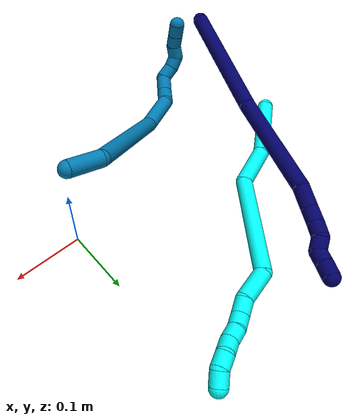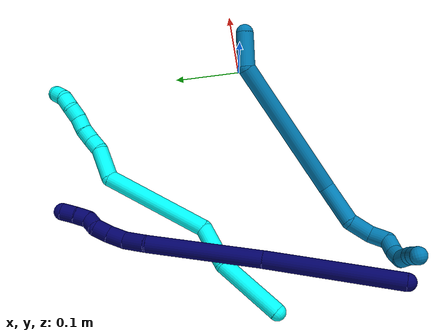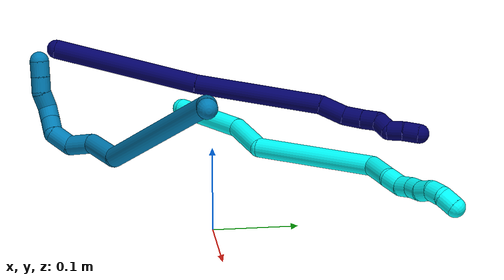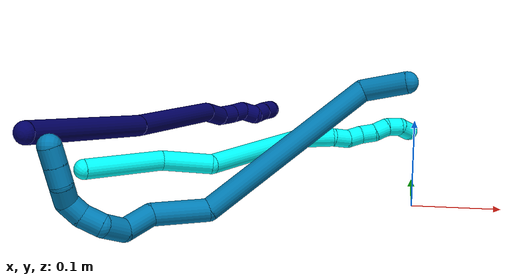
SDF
<sdf version="1.7">
 <world name="default">
  <model name="photoneo_s_sensor">
   <static>1</static>
   <pose>0 0 2 1.57079 1.57079 3.14159</pose>
   <link name="link">
    <inertial><mass>0.1</mass></inertial>
    <sensor name="sensor" type="depth">
     <update_rate>30</update_rate>
     <camera>
      <horizontal_fov>1.22</horizontal_fov>
      <image><width>1920</width><height>1200</height><format>B8G8R8</format></image>
      <clip><near>0.1</near><far>4</far></clip>
      <depth_camera><output>points</output></depth_camera>
     </camera>
     <plugin name="camera_plugin" filename="libgazebo_ros_depth_camera.so">
      <baseline>0.2</baseline>
      <alwaysOn>1</alwaysOn>
      <updateRate>0.0</updateRate>
      <cameraName>camera_ir</cameraName>
      <imageTopicName>/camera/color/image_raw</imageTopicName>
      <cameraInfoTopicName>/camera/color/camera_info</cameraInfoTopicName>
      <depthImageTopicName>/camera/depth/image_raw</depthImageTopicName>
      <depthImageCameraInfoTopicName>/camera/depth/camera_info</depthImageCameraInfoTopicName>
      <pointCloudTopicName>/camera/depth/points</pointCloudTopicName>
      <frameName>fr_optical</frameName>
      <pointCloudCutoff>0.1</pointCloudCutoff>
      <pointCloudCutoffMax>2.0</pointCloudCutoffMax>
      <distortionK1>0</distortionK1>
      <distortionK2>0</distortionK2>
      <distortionK3>0</distortionK3>
      <distortionT1>0</distortionT1>
      <distortionT2>0</distortionT2>
      <CxPrime>0</CxPrime>
      <Cx>0</Cx>
      <Cy>0</Cy>
      <focalLength>0</focalLength>
      <hackBaseline>0</hackBaseline>
     </plugin>
    </sensor>
   </link>
  </model>
  <model name="bin">
   <static>1</static>
   <link name="bottom">
    <collision name="collision-bottom">
     <pose>0 0 -0.01 0 -0 0</pose>
     <geometry><box><size>0.8 0.6 0.02</size></box></geometry>
     <surface>
      <friction><ode><mu>100</mu><mu2>100</mu2></ode></friction>
      <contact><collide_bitmask>65535</collide_bitmask></contact>
     </surface>
    </collision>
   </link>
   <link name="west_wall">
    <collision name="collision-west_wall">
     <pose>-0.41 0 0.1 0 -0 0</pose>
     <geometry><box><size>0.02 0.6 0.2</size></box></geometry>
     <surface>
      <friction><ode><mu>100</mu><mu2>100</mu2></ode></friction>
      <contact><collide_bitmask>65535</collide_bitmask></contact>
     </surface>
    </collision>
   </link>
   <link name="east_wall">
    <collision name="collision-east_wall">
     <pose>0.41 0 0.1 0 -0 0</pose>
     <geometry><box><size>0.02 0.6 0.2</size></box></geometry>
     <surface>
      <friction><ode><mu>100</mu><mu2>100</mu2></ode></friction>
      <contact><collide_bitmask>65535</collide_bitmask></contact>
     </surface>
    </collision>
   </link>
   <link name="south_wall">
    <collision name="collision-south_wall">
     <pose>0 -0.31 0.1 0 -0 0</pose>
     <geometry><box><size>0.8 0.02 0.2</size></box></geometry>
     <surface>
      <friction><ode><mu>100</mu><mu2>100</mu2></ode></friction>
      <contact><collide_bitmask>65535</collide_bitmask></contact>
     </surface>
    </collision>
   </link>
   <link name="north_wall">
    <collision name="collision-north_wall">
     <pose>0 0.31 0.1 0 -0 0</pose>
     <geometry><box><size>0.8 0.02 0.2</size></box></geometry>
     <surface>
      <friction><ode><mu>100</mu><mu2>100</mu2></ode></friction>
      <contact><collide_bitmask>65535</collide_bitmask></contact>
     </surface>
    </collision>
   </link>
  </model>
  <model name="3">
   <static>0</static>
   <link name="3">
    <collision name="collision-cylinder-e_1_1_4">
     <pose>0.042333 0.025758 -0.011848 -2.00193 0.980668 -1.38924</pose>
     <geometry><cylinder><radius>0.0125</radius><length>0.101901</length></cylinder></geometry>
     <surface>
      <friction><ode><mu>1.16</mu><mu2>1.16</mu2><slip1>0</slip1><slip2>0</slip2></ode></friction>
      <contact><ode><kp>1e+06</kp><kd>1</kd><max_vel>0</max_vel><min_depth>0.001</min_depth></ode></contact>
     </surface>
    </collision>
    <visual name="visual-cylinder-e_1_1_4">
     <pose>0.042333 0.025758 -0.011848 -2.00193 0.980668 -1.38924</pose>
     <geometry><cylinder><radius>0.0125</radius><length>0.101901</length></cylinder></geometry>
     <material><ambient>0.003922 1 0.996078 1</ambient></material>
    </visual>
    <collision name="collision-cylinder-e_2_4_5">
     <pose>0.107834 0.063638 -0.041607 -2.54659 0.819769 -1.91258</pose>
     <geometry><cylinder><radius>0.0125</radius><length>0.063387</length></cylinder></geometry>
     <surface>
      <friction><ode><mu>1.16</mu><mu2>1.16</mu2><slip1>0</slip1><slip2>0</slip2></ode></friction>
      <contact><ode><kp>1e+06</kp><kd>1</kd><max_vel>0</max_vel><min_depth>0.001</min_depth></ode></contact>
     </surface>
    </collision>
    <visual name="visual-cylinder-e_2_4_5">
     <pose>0.107834 0.063638 -0.041607 -2.54659 0.819769 -1.91258</pose>
     <geometry><cylinder><radius>0.0125</radius><length>0.063387</length></cylinder></geometry>
     <material><ambient>0.003922 1 0.996078 1</ambient></material>
    </visual>
    <collision name="collision-cylinder-e_3_5_6">
     <pose>0.198473 0.120155 -0.058838 -1.5555 0.988785 -0.976056</pose>
     <geometry><cylinder><radius>0.0125</radius><length>0.16154</length></cylinder></geometry>
     <surface>
      <friction><ode><mu>1.16</mu><mu2>1.16</mu2><slip1>0</slip1><slip2>0</slip2></ode></friction>
      <contact><ode><kp>1e+06</kp><kd>1</kd><max_vel>0</max_vel><min_depth>0.001</min_depth></ode></contact>
     </surface>
    </collision>
    <visual name="visual-cylinder-e_3_5_6">
     <pose>0.198473 0.120155 -0.058838 -1.5555 0.988785 -0.976056</pose>
     <geometry><cylinder><radius>0.0125</radius><length>0.16154</length></cylinder></geometry>
     <material><ambient>0.003922 1 0.996078 1</ambient></material>
    </visual>
    <collision name="collision-cylinder-e_4_6_7">
     <pose>0.28475 0.169671 -0.072346 -2.79515 0.894785 -2.44226</pose>
     <geometry><cylinder><radius>0.0125</radius><length>0.048213</length></cylinder></geometry>
     <surface>
      <friction><ode><mu>1.16</mu><mu2>1.16</mu2><slip1>0</slip1><slip2>0</slip2></ode></friction>
      <contact><ode><kp>1e+06</kp><kd>1</kd><max_vel>0</max_vel><min_depth>0.001</min_depth></ode></contact>
     </surface>
    </collision>
    <visual name="visual-cylinder-e_4_6_7">
     <pose>0.28475 0.169671 -0.072346 -2.79515 0.894785 -2.44226</pose>
     <geometry><cylinder><radius>0.0125</radius><length>0.048213</length></cylinder></geometry>
     <material><ambient>0.003922 1 0.996078 1</ambient></material>
    </visual>
    <collision name="collision-cylinder-e_5_7_8">
     <pose>0.311958 0.180943 -0.091447 -2.24481 0.818007 -1.46674</pose>
     <geometry><cylinder><radius>0.0125</radius><length>0.02303</length></cylinder></geometry>
     <surface>
      <friction><ode><mu>1.16</mu><mu2>1.16</mu2><slip1>0</slip1><slip2>0</slip2></ode></friction>
      <contact><ode><kp>1e+06</kp><kd>1</kd><max_vel>0</max_vel><min_depth>0.001</min_depth></ode></contact>
     </surface>
    </collision>
    <visual name="visual-cylinder-e_5_7_8">
     <pose>0.311958 0.180943 -0.091447 -2.24481 0.818007 -1.46674</pose>
     <geometry><cylinder><radius>0.0125</radius><length>0.02303</length></cylinder></geometry>
     <material><ambient>0.003922 1 0.996078 1</ambient></material>
    </visual>
    <collision name="collision-cylinder-e_6_8_9">
     <pose>0.329828 0.189669 -0.099156 -2.39747 1.18903 -2.09466</pose>
     <geometry><cylinder><radius>0.0125</radius><length>0.020401</length></cylinder></geometry>
     <surface>
      <friction><ode><mu>1.16</mu><mu2>1.16</mu2><slip1>0</slip1><slip2>0</slip2></ode></friction>
      <contact><ode><kp>1e+06</kp><kd>1</kd><max_vel>0</max_vel><min_depth>0.001</min_depth></ode></contact>
     </surface>
    </collision>
    <visual name="visual-cylinder-e_6_8_9">
     <pose>0.329828 0.189669 -0.099156 -2.39747 1.18903 -2.09466</pose>
     <geometry><cylinder><radius>0.0125</radius><length>0.020401</length></cylinder></geometry>
     <material><ambient>0.003922 1 0.996078 1</ambient></material>
    </visual>
    <collision name="collision-cylinder-e_7_9_10">
     <pose>0.348067 0.194165 -0.106887 -2.77015 1.02763 -2.49886</pose>
     <geometry><cylinder><radius>0.0125</radius><length>0.020496</length></cylinder></geometry>
     <surface>
      <friction><ode><mu>1.16</mu><mu2>1.16</mu2><slip1>0</slip1><slip2>0</slip2></ode></friction>
      <contact><ode><kp>1e+06</kp><kd>1</kd><max_vel>0</max_vel><min_depth>0.001</min_depth></ode></contact>
     </surface>
    </collision>
    <visual name="visual-cylinder-e_7_9_10">
     <pose>0.348067 0.194165 -0.106887 -2.77015 1.02763 -2.49886</pose>
     <geometry><cylinder><radius>0.0125</radius><length>0.020496</length></cylinder></geometry>
     <material><ambient>0.003922 1 0.996078 1</ambient></material>
    </visual>
    <collision name="collision-cylinder-e_8_10_11">
     <pose>0.36657 0.197355 -0.114208 -2.65295 1.3 -2.50781</pose>
     <geometry><cylinder><radius>0.0125</radius><length>0.020196</length></cylinder></geometry>
     <surface>
      <friction><ode><mu>1.16</mu><mu2>1.16</mu2><slip1>0</slip1><slip2>0</slip2></ode></friction>
      <contact><ode><kp>1e+06</kp><kd>1</kd><max_vel>0</max_vel><min_depth>0.001</min_depth></ode></contact>
     </surface>
    </collision>
    <visual name="visual-cylinder-e_8_10_11">
     <pose>0.36657 0.197355 -0.114208 -2.65295 1.3 -2.50781</pose>
     <geometry><cylinder><radius>0.0125</radius><length>0.020196</length></cylinder></geometry>
     <material><ambient>0.003922 1 0.996078 1</ambient></material>
    </visual>
    <collision name="collision-cylinder-e_9_11_12">
     <pose>0.384651 0.202723 -0.121052 -2.39816 0.943234 -1.83631</pose>
     <geometry><cylinder><radius>0.0125</radius><length>0.020632</length></cylinder></geometry>
     <surface>
      <friction><ode><mu>1.16</mu><mu2>1.16</mu2><slip1>0</slip1><slip2>0</slip2></ode></friction>
      <contact><ode><kp>1e+06</kp><kd>1</kd><max_vel>0</max_vel><min_depth>0.001</min_depth></ode></contact>
     </surface>
    </collision>
    <visual name="visual-cylinder-e_9_11_12">
     <pose>0.384651 0.202723 -0.121052 -2.39816 0.943234 -1.83631</pose>
     <geometry><cylinder><radius>0.0125</radius><length>0.020632</length></cylinder></geometry>
     <material><ambient>0.003922 1 0.996078 1</ambient></material>
    </visual>
    <collision name="collision-cylinder-e_10_12_2">
     <pose>0.398204 0.214875 -0.128696 -1.94745 0.541083 -0.774674</pose>
     <geometry><cylinder><radius>0.0125</radius><length>0.020204</length></cylinder></geometry>
     <surface>
      <friction><ode><mu>1.16</mu><mu2>1.16</mu2><slip1>0</slip1><slip2>0</slip2></ode></friction>
      <contact><ode><kp>1e+06</kp><kd>1</kd><max_vel>0</max_vel><min_depth>0.001</min_depth></ode></contact>
     </surface>
    </collision>
    <visual name="visual-cylinder-e_10_12_2">
     <pose>0.398204 0.214875 -0.128696 -1.94745 0.541083 -0.774674</pose>
     <geometry><cylinder><radius>0.0125</radius><length>0.020204</length></cylinder></geometry>
     <material><ambient>0.003922 1 0.996078 1</ambient></material>
    </visual>
    <collision name="collision-sphere-2">
     <pose>0.403408 0.222927 -0.131881 0 -0 0</pose>
     <geometry><sphere><radius>0.0125</radius></sphere></geometry>
     <surface>
      <friction><ode><mu>1.16</mu><mu2>1.16</mu2><slip1>0</slip1><slip2>0</slip2></ode></friction>
      <contact><ode><kp>1e+06</kp><kd>1</kd><max_vel>0</max_vel><min_depth>0.001</min_depth></ode></contact>
     </surface>
    </collision>
    <visual name="visual-sphere-2">
     <pose>0.403408 0.222927 -0.131881 0 -0 0</pose>
     <geometry><sphere><radius>0.0125</radius></sphere></geometry>
     <material><ambient>0.003922 1 0.996078 1</ambient></material>
    </visual>
    <collision name="collision-sphere-12">
     <pose>0.393001 0.206823 -0.125511 0 -0 0</pose>
     <geometry><sphere><radius>0.0125</radius></sphere></geometry>
     <surface>
      <friction><ode><mu>1.16</mu><mu2>1.16</mu2><slip1>0</slip1><slip2>0</slip2></ode></friction>
      <contact><ode><kp>1e+06</kp><kd>1</kd><max_vel>0</max_vel><min_depth>0.001</min_depth></ode></contact>
     </surface>
    </collision>
    <visual name="visual-sphere-12">
     <pose>0.393001 0.206823 -0.125511 0 -0 0</pose>
     <geometry><sphere><radius>0.0125</radius></sphere></geometry>
     <material><ambient>0.003922 1 0.996078 1</ambient></material>
    </visual>
    <collision name="collision-sphere-11">
     <pose>0.3763 0.198624 -0.116593 0 -0 0</pose>
     <geometry><sphere><radius>0.0125</radius></sphere></geometry>
     <surface>
      <friction><ode><mu>1.16</mu><mu2>1.16</mu2><slip1>0</slip1><slip2>0</slip2></ode></friction>
      <contact><ode><kp>1e+06</kp><kd>1</kd><max_vel>0</max_vel><min_depth>0.001</min_depth></ode></contact>
     </surface>
    </collision>
    <visual name="visual-sphere-11">
     <pose>0.3763 0.198624 -0.116593 0 -0 0</pose>
     <geometry><sphere><radius>0.0125</radius></sphere></geometry>
     <material><ambient>0.003922 1 0.996078 1</ambient></material>
    </visual>
    <collision name="collision-sphere-10">
     <pose>0.35684 0.196087 -0.111823 0 -0 0</pose>
     <geometry><sphere><radius>0.0125</radius></sphere></geometry>
     <surface>
      <friction><ode><mu>1.16</mu><mu2>1.16</mu2><slip1>0</slip1><slip2>0</slip2></ode></friction>
      <contact><ode><kp>1e+06</kp><kd>1</kd><max_vel>0</max_vel><min_depth>0.001</min_depth></ode></contact>
     </surface>
    </collision>
    <visual name="visual-sphere-10">
     <pose>0.35684 0.196087 -0.111823 0 -0 0</pose>
     <geometry><sphere><radius>0.0125</radius></sphere></geometry>
     <material><ambient>0.003922 1 0.996078 1</ambient></material>
    </visual>
    <collision name="collision-sphere-9">
     <pose>0.339295 0.192243 -0.101952 0 -0 0</pose>
     <geometry><sphere><radius>0.0125</radius></sphere></geometry>
     <surface>
      <friction><ode><mu>1.16</mu><mu2>1.16</mu2><slip1>0</slip1><slip2>0</slip2></ode></friction>
      <contact><ode><kp>1e+06</kp><kd>1</kd><max_vel>0</max_vel><min_depth>0.001</min_depth></ode></contact>
     </surface>
    </collision>
    <visual name="visual-sphere-9">
     <pose>0.339295 0.192243 -0.101952 0 -0 0</pose>
     <geometry><sphere><radius>0.0125</radius></sphere></geometry>
     <material><ambient>0.003922 1 0.996078 1</ambient></material>
    </visual>
    <collision name="collision-sphere-4">
     <pose>0.084666 0.051516 -0.023697 0 -0 0</pose>
     <geometry><sphere><radius>0.0125</radius></sphere></geometry>
     <surface>
      <friction><ode><mu>1.16</mu><mu2>1.16</mu2><slip1>0</slip1><slip2>0</slip2></ode></friction>
      <contact><ode><kp>1e+06</kp><kd>1</kd><max_vel>0</max_vel><min_depth>0.001</min_depth></ode></contact>
     </surface>
    </collision>
    <visual name="visual-sphere-4">
     <pose>0.084666 0.051516 -0.023697 0 -0 0</pose>
     <geometry><sphere><radius>0.0125</radius></sphere></geometry>
     <material><ambient>0.003922 1 0.996078 1</ambient></material>
    </visual>
    <collision name="collision-sphere-1">
     <geometry><sphere><radius>0.0125</radius></sphere></geometry>
     <surface>
      <friction><ode><mu>1.16</mu><mu2>1.16</mu2><slip1>0</slip1><slip2>0</slip2></ode></friction>
      <contact><ode><kp>1e+06</kp><kd>1</kd><max_vel>0</max_vel><min_depth>0.001</min_depth></ode></contact>
     </surface>
    </collision>
    <visual name="visual-sphere-1">
     <geometry><sphere><radius>0.0125</radius></sphere></geometry>
     <material><ambient>0.003922 1 0.996078 1</ambient></material>
    </visual>
    <collision name="collision-sphere-8">
     <pose>0.320362 0.187094 -0.09636 0 -0 0</pose>
     <geometry><sphere><radius>0.0125</radius></sphere></geometry>
     <surface>
      <friction><ode><mu>1.16</mu><mu2>1.16</mu2><slip1>0</slip1><slip2>0</slip2></ode></friction>
      <contact><ode><kp>1e+06</kp><kd>1</kd><max_vel>0</max_vel><min_depth>0.001</min_depth></ode></contact>
     </surface>
    </collision>
    <visual name="visual-sphere-8">
     <pose>0.320362 0.187094 -0.09636 0 -0 0</pose>
     <geometry><sphere><radius>0.0125</radius></sphere></geometry>
     <material><ambient>0.003922 1 0.996078 1</ambient></material>
    </visual>
    <collision name="collision-sphere-5">
     <pose>0.131001 0.07576 -0.059518 0 -0 0</pose>
     <geometry><sphere><radius>0.0125</radius></sphere></geometry>
     <surface>
      <friction><ode><mu>1.16</mu><mu2>1.16</mu2><slip1>0</slip1><slip2>0</slip2></ode></friction>
      <contact><ode><kp>1e+06</kp><kd>1</kd><max_vel>0</max_vel><min_depth>0.001</min_depth></ode></contact>
     </surface>
    </collision>
    <visual name="visual-sphere-5">
     <pose>0.131001 0.07576 -0.059518 0 -0 0</pose>
     <geometry><sphere><radius>0.0125</radius></sphere></geometry>
     <material><ambient>0.003922 1 0.996078 1</ambient></material>
    </visual>
    <collision name="collision-sphere-6">
     <pose>0.265945 0.164549 -0.058159 0 -0 0</pose>
     <geometry><sphere><radius>0.0125</radius></sphere></geometry>
     <surface>
      <friction><ode><mu>1.16</mu><mu2>1.16</mu2><slip1>0</slip1><slip2>0</slip2></ode></friction>
      <contact><ode><kp>1e+06</kp><kd>1</kd><max_vel>0</max_vel><min_depth>0.001</min_depth></ode></contact>
     </surface>
    </collision>
    <visual name="visual-sphere-6">
     <pose>0.265945 0.164549 -0.058159 0 -0 0</pose>
     <geometry><sphere><radius>0.0125</radius></sphere></geometry>
     <material><ambient>0.003922 1 0.996078 1</ambient></material>
    </visual>
    <collision name="collision-sphere-7">
     <pose>0.303555 0.174792 -0.086533 0 -0 0</pose>
     <geometry><sphere><radius>0.0125</radius></sphere></geometry>
     <surface>
      <friction><ode><mu>1.16</mu><mu2>1.16</mu2><slip1>0</slip1><slip2>0</slip2></ode></friction>
      <contact><ode><kp>1e+06</kp><kd>1</kd><max_vel>0</max_vel><min_depth>0.001</min_depth></ode></contact>
     </surface>
    </collision>
    <visual name="visual-sphere-7">
     <pose>0.303555 0.174792 -0.086533 0 -0 0</pose>
     <geometry><sphere><radius>0.0125</radius></sphere></geometry>
     <material><ambient>0.003922 1 0.996078 1</ambient></material>
    </visual>
    <inertial>
     <pose>0.202742 0.117549 -0.061123 0 -0 0</pose>
     <mass>0.5</mass>
     <inertia>
      <ixx>-9.8e-05</ixx>
      <ixy>0</ixy>
      <ixz>0</ixz>
      <iyy>0.000124</iyy>
      <iyz>0</iyz>
      <izz>-0.000677</izz>
     </inertia>
    </inertial>
   </link>
   <pose>-0.388512 0.002714 0.027466 -1.09396 -0.540575 0.670016</pose>
  </model>
  <model name="7">
   <static>0</static>
   <link name="7">
    <collision name="collision-cylinder-e_1_1_4">
     <pose>0.028088 0.015694 -0.090987 -2.97079 0.295311 -2.09706</pose>
     <geometry><cylinder><radius>0.0125</radius><length>0.193017</length></cylinder></geometry>
     <surface>
      <friction><ode><mu>1.16</mu><mu2>1.16</mu2><slip1>0</slip1><slip2>0</slip2></ode></friction>
      <contact><ode><kp>1e+06</kp><kd>1</kd><max_vel>0</max_vel><min_depth>0.001</min_depth></ode></contact>
     </surface>
    </collision>
    <visual name="visual-cylinder-e_1_1_4">
     <pose>0.028088 0.015694 -0.090987 -2.97079 0.295311 -2.09706</pose>
     <geometry><cylinder><radius>0.0125</radius><length>0.193017</length></cylinder></geometry>
     <material><ambient>0.003922 0 0.403922 1</ambient></material>
    </visual>
    <collision name="collision-cylinder-e_2_4_5">
     <pose>0.073966 0.04663 -0.260919 -2.95086 0.217761 -1.70386</pose>
     <geometry><cylinder><radius>0.0125</radius><length>0.164694</length></cylinder></geometry>
     <surface>
      <friction><ode><mu>1.16</mu><mu2>1.16</mu2><slip1>0</slip1><slip2>0</slip2></ode></friction>
      <contact><ode><kp>1e+06</kp><kd>1</kd><max_vel>0</max_vel><min_depth>0.001</min_depth></ode></contact>
     </surface>
    </collision>
    <visual name="visual-cylinder-e_2_4_5">
     <pose>0.073966 0.04663 -0.260919 -2.95086 0.217761 -1.70386</pose>
     <geometry><cylinder><radius>0.0125</radius><length>0.164694</length></cylinder></geometry>
     <material><ambient>0.003922 0 0.403922 1</ambient></material>
    </visual>
    <collision name="collision-cylinder-e_3_5_6">
     <pose>0.099298 0.063039 -0.355159 -3.06547 0.456931 -2.81694</pose>
     <geometry><cylinder><radius>0.0125</radius><length>0.034187</length></cylinder></geometry>
     <surface>
      <friction><ode><mu>1.16</mu><mu2>1.16</mu2><slip1>0</slip1><slip2>0</slip2></ode></friction>
      <contact><ode><kp>1e+06</kp><kd>1</kd><max_vel>0</max_vel><min_depth>0.001</min_depth></ode></contact>
     </surface>
    </collision>
    <visual name="visual-cylinder-e_3_5_6">
     <pose>0.099298 0.063039 -0.355159 -3.06547 0.456931 -2.81694</pose>
     <geometry><cylinder><radius>0.0125</radius><length>0.034187</length></cylinder></geometry>
     <material><ambient>0.003922 0 0.403922 1</ambient></material>
    </visual>
    <collision name="collision-cylinder-e_4_6_7">
     <pose>0.110976 0.068734 -0.381718 -2.7594 0.328356 -1.41635</pose>
     <geometry><cylinder><radius>0.0125</radius><length>0.025649</length></cylinder></geometry>
     <surface>
      <friction><ode><mu>1.16</mu><mu2>1.16</mu2><slip1>0</slip1><slip2>0</slip2></ode></friction>
      <contact><ode><kp>1e+06</kp><kd>1</kd><max_vel>0</max_vel><min_depth>0.001</min_depth></ode></contact>
     </surface>
    </collision>
    <visual name="visual-cylinder-e_4_6_7">
     <pose>0.110976 0.068734 -0.381718 -2.7594 0.328356 -1.41635</pose>
     <geometry><cylinder><radius>0.0125</radius><length>0.025649</length></cylinder></geometry>
     <material><ambient>0.003922 0 0.403922 1</ambient></material>
    </visual>
    <collision name="collision-cylinder-e_5_7_8">
     <pose>0.118517 0.078406 -0.402117 -2.62868 0.314042 -1.08635</pose>
     <geometry><cylinder><radius>0.0125</radius><length>0.022047</length></cylinder></geometry>
     <surface>
      <friction><ode><mu>1.16</mu><mu2>1.16</mu2><slip1>0</slip1><slip2>0</slip2></ode></friction>
      <contact><ode><kp>1e+06</kp><kd>1</kd><max_vel>0</max_vel><min_depth>0.001</min_depth></ode></contact>
     </surface>
    </collision>
    <visual name="visual-cylinder-e_5_7_8">
     <pose>0.118517 0.078406 -0.402117 -2.62868 0.314042 -1.08635</pose>
     <geometry><cylinder><radius>0.0125</radius><length>0.022047</length></cylinder></geometry>
     <material><ambient>0.003922 0 0.403922 1</ambient></material>
    </visual>
    <collision name="collision-cylinder-e_6_8_9">
     <pose>0.129629 0.087146 -0.416623 -2.55175 0.873008 -1.9872</pose>
     <geometry><cylinder><radius>0.0125</radius><length>0.020115</length></cylinder></geometry>
     <surface>
      <friction><ode><mu>1.16</mu><mu2>1.16</mu2><slip1>0</slip1><slip2>0</slip2></ode></friction>
      <contact><ode><kp>1e+06</kp><kd>1</kd><max_vel>0</max_vel><min_depth>0.001</min_depth></ode></contact>
     </surface>
    </collision>
    <visual name="visual-cylinder-e_6_8_9">
     <pose>0.129629 0.087146 -0.416623 -2.55175 0.873008 -1.9872</pose>
     <geometry><cylinder><radius>0.0125</radius><length>0.020115</length></cylinder></geometry>
     <material><ambient>0.003922 0 0.403922 1</ambient></material>
    </visual>
    <collision name="collision-cylinder-e_7_9_10">
     <pose>0.1392 0.094687 -0.431034 -2.72994 0.186754 -0.843287</pose>
     <geometry><cylinder><radius>0.0125</radius><length>0.020078</length></cylinder></geometry>
     <surface>
      <friction><ode><mu>1.16</mu><mu2>1.16</mu2><slip1>0</slip1><slip2>0</slip2></ode></friction>
      <contact><ode><kp>1e+06</kp><kd>1</kd><max_vel>0</max_vel><min_depth>0.001</min_depth></ode></contact>
     </surface>
    </collision>
    <visual name="visual-cylinder-e_7_9_10">
     <pose>0.1392 0.094687 -0.431034 -2.72994 0.186754 -0.843287</pose>
     <geometry><cylinder><radius>0.0125</radius><length>0.020078</length></cylinder></geometry>
     <material><ambient>0.003922 0 0.403922 1</ambient></material>
    </visual>
    <collision name="collision-cylinder-e_8_10_2">
     <pose>0.143714 0.101567 -0.449375 -2.83613 0.265373 -1.42865</pose>
     <geometry><cylinder><radius>0.0125</radius><length>0.020211</length></cylinder></geometry>
     <surface>
      <friction><ode><mu>1.16</mu><mu2>1.16</mu2><slip1>0</slip1><slip2>0</slip2></ode></friction>
      <contact><ode><kp>1e+06</kp><kd>1</kd><max_vel>0</max_vel><min_depth>0.001</min_depth></ode></contact>
     </surface>
    </collision>
    <visual name="visual-cylinder-e_8_10_2">
     <pose>0.143714 0.101567 -0.449375 -2.83613 0.265373 -1.42865</pose>
     <geometry><cylinder><radius>0.0125</radius><length>0.020211</length></cylinder></geometry>
     <material><ambient>0.003922 0 0.403922 1</ambient></material>
    </visual>
    <collision name="collision-sphere-2">
     <pose>0.146364 0.1045 -0.458675 0 -0 0</pose>
     <geometry><sphere><radius>0.0125</radius></sphere></geometry>
     <surface>
      <friction><ode><mu>1.16</mu><mu2>1.16</mu2><slip1>0</slip1><slip2>0</slip2></ode></friction>
      <contact><ode><kp>1e+06</kp><kd>1</kd><max_vel>0</max_vel><min_depth>0.001</min_depth></ode></contact>
     </surface>
    </collision>
    <visual name="visual-sphere-2">
     <pose>0.146364 0.1045 -0.458675 0 -0 0</pose>
     <geometry><sphere><radius>0.0125</radius></sphere></geometry>
     <material><ambient>0.003922 0 0.403922 1</ambient></material>
    </visual>
    <collision name="collision-sphere-10">
     <pose>0.141064 0.098634 -0.440074 0 -0 0</pose>
     <geometry><sphere><radius>0.0125</radius></sphere></geometry>
     <surface>
      <friction><ode><mu>1.16</mu><mu2>1.16</mu2><slip1>0</slip1><slip2>0</slip2></ode></friction>
      <contact><ode><kp>1e+06</kp><kd>1</kd><max_vel>0</max_vel><min_depth>0.001</min_depth></ode></contact>
     </surface>
    </collision>
    <visual name="visual-sphere-10">
     <pose>0.141064 0.098634 -0.440074 0 -0 0</pose>
     <geometry><sphere><radius>0.0125</radius></sphere></geometry>
     <material><ambient>0.003922 0 0.403922 1</ambient></material>
    </visual>
    <collision name="collision-sphere-9">
     <pose>0.137336 0.09074 -0.421993 0 -0 0</pose>
     <geometry><sphere><radius>0.0125</radius></sphere></geometry>
     <surface>
      <friction><ode><mu>1.16</mu><mu2>1.16</mu2><slip1>0</slip1><slip2>0</slip2></ode></friction>
      <contact><ode><kp>1e+06</kp><kd>1</kd><max_vel>0</max_vel><min_depth>0.001</min_depth></ode></contact>
     </surface>
    </collision>
    <visual name="visual-sphere-9">
     <pose>0.137336 0.09074 -0.421993 0 -0 0</pose>
     <geometry><sphere><radius>0.0125</radius></sphere></geometry>
     <material><ambient>0.003922 0 0.403922 1</ambient></material>
    </visual>
    <collision name="collision-sphere-4">
     <pose>0.056175 0.031388 -0.181975 0 -0 0</pose>
     <geometry><sphere><radius>0.0125</radius></sphere></geometry>
     <surface>
      <friction><ode><mu>1.16</mu><mu2>1.16</mu2><slip1>0</slip1><slip2>0</slip2></ode></friction>
      <contact><ode><kp>1e+06</kp><kd>1</kd><max_vel>0</max_vel><min_depth>0.001</min_depth></ode></contact>
     </surface>
    </collision>
    <visual name="visual-sphere-4">
     <pose>0.056175 0.031388 -0.181975 0 -0 0</pose>
     <geometry><sphere><radius>0.0125</radius></sphere></geometry>
     <material><ambient>0.003922 0 0.403922 1</ambient></material>
    </visual>
    <collision name="collision-sphere-1">
     <geometry><sphere><radius>0.0125</radius></sphere></geometry>
     <surface>
      <friction><ode><mu>1.16</mu><mu2>1.16</mu2><slip1>0</slip1><slip2>0</slip2></ode></friction>
      <contact><ode><kp>1e+06</kp><kd>1</kd><max_vel>0</max_vel><min_depth>0.001</min_depth></ode></contact>
     </surface>
    </collision>
    <visual name="visual-sphere-1">
     <geometry><sphere><radius>0.0125</radius></sphere></geometry>
     <material><ambient>0.003922 0 0.403922 1</ambient></material>
    </visual>
    <collision name="collision-sphere-8">
     <pose>0.121922 0.083551 -0.411253 0 -0 0</pose>
     <geometry><sphere><radius>0.0125</radius></sphere></geometry>
     <surface>
      <friction><ode><mu>1.16</mu><mu2>1.16</mu2><slip1>0</slip1><slip2>0</slip2></ode></friction>
      <contact><ode><kp>1e+06</kp><kd>1</kd><max_vel>0</max_vel><min_depth>0.001</min_depth></ode></contact>
     </surface>
    </collision>
    <visual name="visual-sphere-8">
     <pose>0.121922 0.083551 -0.411253 0 -0 0</pose>
     <geometry><sphere><radius>0.0125</radius></sphere></geometry>
     <material><ambient>0.003922 0 0.403922 1</ambient></material>
    </visual>
    <collision name="collision-sphere-5">
     <pose>0.091757 0.061873 -0.339864 0 -0 0</pose>
     <geometry><sphere><radius>0.0125</radius></sphere></geometry>
     <surface>
      <friction><ode><mu>1.16</mu><mu2>1.16</mu2><slip1>0</slip1><slip2>0</slip2></ode></friction>
      <contact><ode><kp>1e+06</kp><kd>1</kd><max_vel>0</max_vel><min_depth>0.001</min_depth></ode></contact>
     </surface>
    </collision>
    <visual name="visual-sphere-5">
     <pose>0.091757 0.061873 -0.339864 0 -0 0</pose>
     <geometry><sphere><radius>0.0125</radius></sphere></geometry>
     <material><ambient>0.003922 0 0.403922 1</ambient></material>
    </visual>
    <collision name="collision-sphere-6">
     <pose>0.10684 0.064206 -0.370455 0 -0 0</pose>
     <geometry><sphere><radius>0.0125</radius></sphere></geometry>
     <surface>
      <friction><ode><mu>1.16</mu><mu2>1.16</mu2><slip1>0</slip1><slip2>0</slip2></ode></friction>
      <contact><ode><kp>1e+06</kp><kd>1</kd><max_vel>0</max_vel><min_depth>0.001</min_depth></ode></contact>
     </surface>
    </collision>
    <visual name="visual-sphere-6">
     <pose>0.10684 0.064206 -0.370455 0 -0 0</pose>
     <geometry><sphere><radius>0.0125</radius></sphere></geometry>
     <material><ambient>0.003922 0 0.403922 1</ambient></material>
    </visual>
    <collision name="collision-sphere-7">
     <pose>0.115111 0.073261 -0.392982 0 -0 0</pose>
     <geometry><sphere><radius>0.0125</radius></sphere></geometry>
     <surface>
      <friction><ode><mu>1.16</mu><mu2>1.16</mu2><slip1>0</slip1><slip2>0</slip2></ode></friction>
      <contact><ode><kp>1e+06</kp><kd>1</kd><max_vel>0</max_vel><min_depth>0.001</min_depth></ode></contact>
     </surface>
    </collision>
    <visual name="visual-sphere-7">
     <pose>0.115111 0.073261 -0.392982 0 -0 0</pose>
     <geometry><sphere><radius>0.0125</radius></sphere></geometry>
     <material><ambient>0.003922 0 0.403922 1</ambient></material>
    </visual>
    <inertial>
     <pose>0.069529 0.044125 -0.234899 0 -0 0</pose>
     <mass>0.5</mass>
     <inertia>
      <ixx>-0.001208</ixx>
      <ixy>0</ixy>
      <ixz>0</ixz>
      <iyy>-0.000474</iyy>
      <iyz>0</iyz>
      <izz>-0.000472</izz>
     </inertia>
    </inertial>
   </link>
   <pose>-0.386539 -0.163291 0.116138 1.44461 0.829173 -0.106425</pose>
  </model>
  <model name="9">
   <static>0</static>
   <link name="9">
    <collision name="collision-cylinder-e_1_1_4">
     <pose>0.006272 0.000179 -0.024623 -3.13431 0.249395 -3.08351</pose>
     <geometry><cylinder><radius>0.0125</radius><length>0.05082</length></cylinder></geometry>
     <surface>
      <friction><ode><mu>1.16</mu><mu2>1.16</mu2><slip1>0</slip1><slip2>0</slip2></ode></friction>
      <contact><ode><kp>1e+06</kp><kd>1</kd><max_vel>0</max_vel><min_depth>0.001</min_depth></ode></contact>
     </surface>
    </collision>
    <visual name="visual-cylinder-e_1_1_4">
     <pose>0.006272 0.000179 -0.024623 -3.13431 0.249395 -3.08351</pose>
     <geometry><cylinder><radius>0.0125</radius><length>0.05082</length></cylinder></geometry>
     <material><ambient>0 0.490196 0.709804 1</ambient></material>
    </visual>
    <collision name="collision-cylinder-e_2_4_5">
     <pose>0.027188 -0.067736 -0.132568 2.45642 0.135261 0.375365</pose>
     <geometry><cylinder><radius>0.0125</radius><length>0.217198</length></cylinder></geometry>
     <surface>
      <friction><ode><mu>1.16</mu><mu2>1.16</mu2><slip1>0</slip1><slip2>0</slip2></ode></friction>
      <contact><ode><kp>1e+06</kp><kd>1</kd><max_vel>0</max_vel><min_depth>0.001</min_depth></ode></contact>
     </surface>
    </collision>
    <visual name="visual-cylinder-e_2_4_5">
     <pose>0.027188 -0.067736 -0.132568 2.45642 0.135261 0.375365</pose>
     <geometry><cylinder><radius>0.0125</radius><length>0.217198</length></cylinder></geometry>
     <material><ambient>0 0.490196 0.709804 1</ambient></material>
    </visual>
    <collision name="collision-cylinder-e_3_5_6">
     <pose>0.034475 -0.142906 -0.245063 2.90364 -0.240336 -1.58086</pose>
     <geometry><cylinder><radius>0.0125</radius><length>0.061816</length></cylinder></geometry>
     <surface>
      <friction><ode><mu>1.16</mu><mu2>1.16</mu2><slip1>0</slip1><slip2>0</slip2></ode></friction>
      <contact><ode><kp>1e+06</kp><kd>1</kd><max_vel>0</max_vel><min_depth>0.001</min_depth></ode></contact>
     </surface>
    </collision>
    <visual name="visual-cylinder-e_3_5_6">
     <pose>0.034475 -0.142906 -0.245063 2.90364 -0.240336 -1.58086</pose>
     <geometry><cylinder><radius>0.0125</radius><length>0.061816</length></cylinder></geometry>
     <material><ambient>0 0.490196 0.709804 1</ambient></material>
    </visual>
    <collision name="collision-cylinder-e_4_6_7">
     <pose>0.022084 -0.162634 -0.285832 2.31264 -0.285326 -0.63114</pose>
     <geometry><cylinder><radius>0.0125</radius><length>0.035769</length></cylinder></geometry>
     <surface>
      <friction><ode><mu>1.16</mu><mu2>1.16</mu2><slip1>0</slip1><slip2>0</slip2></ode></friction>
      <contact><ode><kp>1e+06</kp><kd>1</kd><max_vel>0</max_vel><min_depth>0.001</min_depth></ode></contact>
     </surface>
    </collision>
    <visual name="visual-cylinder-e_4_6_7">
     <pose>0.022084 -0.162634 -0.285832 2.31264 -0.285326 -0.63114</pose>
     <geometry><cylinder><radius>0.0125</radius><length>0.035769</length></cylinder></geometry>
     <material><ambient>0 0.490196 0.709804 1</ambient></material>
    </visual>
    <collision name="collision-cylinder-e_5_7_8">
     <pose>0.006029 -0.179106 -0.305647 2.70656 -0.882513 -2.26626</pose>
     <geometry><cylinder><radius>0.0125</radius><length>0.02854</length></cylinder></geometry>
     <surface>
      <friction><ode><mu>1.16</mu><mu2>1.16</mu2><slip1>0</slip1><slip2>0</slip2></ode></friction>
      <contact><ode><kp>1e+06</kp><kd>1</kd><max_vel>0</max_vel><min_depth>0.001</min_depth></ode></contact>
     </surface>
    </collision>
    <visual name="visual-cylinder-e_5_7_8">
     <pose>0.006029 -0.179106 -0.305647 2.70656 -0.882513 -2.26626</pose>
     <geometry><cylinder><radius>0.0125</radius><length>0.02854</length></cylinder></geometry>
     <material><ambient>0 0.490196 0.709804 1</ambient></material>
    </visual>
    <collision name="collision-cylinder-e_6_8_9">
     <pose>-0.009934 -0.17984 -0.323982 -2.84554 -0.43717 1.95918</pose>
     <geometry><cylinder><radius>0.0125</radius><length>0.023346</length></cylinder></geometry>
     <surface>
      <friction><ode><mu>1.16</mu><mu2>1.16</mu2><slip1>0</slip1><slip2>0</slip2></ode></friction>
      <contact><ode><kp>1e+06</kp><kd>1</kd><max_vel>0</max_vel><min_depth>0.001</min_depth></ode></contact>
     </surface>
    </collision>
    <visual name="visual-cylinder-e_6_8_9">
     <pose>-0.009934 -0.17984 -0.323982 -2.84554 -0.43717 1.95918</pose>
     <geometry><cylinder><radius>0.0125</radius><length>0.023346</length></cylinder></geometry>
     <material><ambient>0 0.490196 0.709804 1</ambient></material>
    </visual>
    <collision name="collision-cylinder-e_7_9_10">
     <pose>-0.021586 -0.173032 -0.340671 -2.62628 -0.726248 1.92888</pose>
     <geometry><cylinder><radius>0.0125</radius><length>0.020207</length></cylinder></geometry>
     <surface>
      <friction><ode><mu>1.16</mu><mu2>1.16</mu2><slip1>0</slip1><slip2>0</slip2></ode></friction>
      <contact><ode><kp>1e+06</kp><kd>1</kd><max_vel>0</max_vel><min_depth>0.001</min_depth></ode></contact>
     </surface>
    </collision>
    <visual name="visual-cylinder-e_7_9_10">
     <pose>-0.021586 -0.173032 -0.340671 -2.62628 -0.726248 1.92888</pose>
     <geometry><cylinder><radius>0.0125</radius><length>0.020207</length></cylinder></geometry>
     <material><ambient>0 0.490196 0.709804 1</ambient></material>
    </visual>
    <collision name="collision-cylinder-e_8_10_11">
     <pose>-0.038442 -0.165867 -0.34777 -1.72248 -1.24021 1.38733</pose>
     <geometry><cylinder><radius>0.0125</radius><length>0.021455</length></cylinder></geometry>
     <surface>
      <friction><ode><mu>1.16</mu><mu2>1.16</mu2><slip1>0</slip1><slip2>0</slip2></ode></friction>
      <contact><ode><kp>1e+06</kp><kd>1</kd><max_vel>0</max_vel><min_depth>0.001</min_depth></ode></contact>
     </surface>
    </collision>
    <visual name="visual-cylinder-e_8_10_11">
     <pose>-0.038442 -0.165867 -0.34777 -1.72248 -1.24021 1.38733</pose>
     <geometry><cylinder><radius>0.0125</radius><length>0.021455</length></cylinder></geometry>
     <material><ambient>0 0.490196 0.709804 1</ambient></material>
    </visual>
    <collision name="collision-cylinder-e_9_11_12">
     <pose>-0.056516 -0.156309 -0.35015 -1.86505 -0.892347 1.14541</pose>
     <geometry><cylinder><radius>0.0125</radius><length>0.020366</length></cylinder></geometry>
     <surface>
      <friction><ode><mu>1.16</mu><mu2>1.16</mu2><slip1>0</slip1><slip2>0</slip2></ode></friction>
      <contact><ode><kp>1e+06</kp><kd>1</kd><max_vel>0</max_vel><min_depth>0.001</min_depth></ode></contact>
     </surface>
    </collision>
    <visual name="visual-cylinder-e_9_11_12">
     <pose>-0.056516 -0.156309 -0.35015 -1.86505 -0.892347 1.14541</pose>
     <geometry><cylinder><radius>0.0125</radius><length>0.020366</length></cylinder></geometry>
     <material><ambient>0 0.490196 0.709804 1</ambient></material>
    </visual>
    <collision name="collision-cylinder-e_10_12_2">
     <pose>-0.072516 -0.144175 -0.353879 -1.87291 -0.907794 1.17101</pose>
     <geometry><cylinder><radius>0.0125</radius><length>0.020483</length></cylinder></geometry>
     <surface>
      <friction><ode><mu>1.16</mu><mu2>1.16</mu2><slip1>0</slip1><slip2>0</slip2></ode></friction>
      <contact><ode><kp>1e+06</kp><kd>1</kd><max_vel>0</max_vel><min_depth>0.001</min_depth></ode></contact>
     </surface>
    </collision>
    <visual name="visual-cylinder-e_10_12_2">
     <pose>-0.072516 -0.144175 -0.353879 -1.87291 -0.907794 1.17101</pose>
     <geometry><cylinder><radius>0.0125</radius><length>0.020483</length></cylinder></geometry>
     <material><ambient>0 0.490196 0.709804 1</ambient></material>
    </visual>
    <collision name="collision-sphere-2">
     <pose>-0.080588 -0.138157 -0.355754 0 -0 0</pose>
     <geometry><sphere><radius>0.0125</radius></sphere></geometry>
     <surface>
      <friction><ode><mu>1.16</mu><mu2>1.16</mu2><slip1>0</slip1><slip2>0</slip2></ode></friction>
      <contact><ode><kp>1e+06</kp><kd>1</kd><max_vel>0</max_vel><min_depth>0.001</min_depth></ode></contact>
     </surface>
    </collision>
    <visual name="visual-sphere-2">
     <pose>-0.080588 -0.138157 -0.355754 0 -0 0</pose>
     <geometry><sphere><radius>0.0125</radius></sphere></geometry>
     <material><ambient>0 0.490196 0.709804 1</ambient></material>
    </visual>
    <collision name="collision-sphere-12">
     <pose>-0.064444 -0.150193 -0.352003 0 -0 0</pose>
     <geometry><sphere><radius>0.0125</radius></sphere></geometry>
     <surface>
      <friction><ode><mu>1.16</mu><mu2>1.16</mu2><slip1>0</slip1><slip2>0</slip2></ode></friction>
      <contact><ode><kp>1e+06</kp><kd>1</kd><max_vel>0</max_vel><min_depth>0.001</min_depth></ode></contact>
     </surface>
    </collision>
    <visual name="visual-sphere-12">
     <pose>-0.064444 -0.150193 -0.352003 0 -0 0</pose>
     <geometry><sphere><radius>0.0125</radius></sphere></geometry>
     <material><ambient>0 0.490196 0.709804 1</ambient></material>
    </visual>
    <collision name="collision-sphere-11">
     <pose>-0.048589 -0.162425 -0.348296 0 -0 0</pose>
     <geometry><sphere><radius>0.0125</radius></sphere></geometry>
     <surface>
      <friction><ode><mu>1.16</mu><mu2>1.16</mu2><slip1>0</slip1><slip2>0</slip2></ode></friction>
      <contact><ode><kp>1e+06</kp><kd>1</kd><max_vel>0</max_vel><min_depth>0.001</min_depth></ode></contact>
     </surface>
    </collision>
    <visual name="visual-sphere-11">
     <pose>-0.048589 -0.162425 -0.348296 0 -0 0</pose>
     <geometry><sphere><radius>0.0125</radius></sphere></geometry>
     <material><ambient>0 0.490196 0.709804 1</ambient></material>
    </visual>
    <collision name="collision-sphere-10">
     <pose>-0.028295 -0.16931 -0.347244 0 -0 0</pose>
     <geometry><sphere><radius>0.0125</radius></sphere></geometry>
     <surface>
      <friction><ode><mu>1.16</mu><mu2>1.16</mu2><slip1>0</slip1><slip2>0</slip2></ode></friction>
      <contact><ode><kp>1e+06</kp><kd>1</kd><max_vel>0</max_vel><min_depth>0.001</min_depth></ode></contact>
     </surface>
    </collision>
    <visual name="visual-sphere-10">
     <pose>-0.028295 -0.16931 -0.347244 0 -0 0</pose>
     <geometry><sphere><radius>0.0125</radius></sphere></geometry>
     <material><ambient>0 0.490196 0.709804 1</ambient></material>
    </visual>
    <collision name="collision-sphere-9">
     <pose>-0.014876 -0.176755 -0.334098 0 -0 0</pose>
     <geometry><sphere><radius>0.0125</radius></sphere></geometry>
     <surface>
      <friction><ode><mu>1.16</mu><mu2>1.16</mu2><slip1>0</slip1><slip2>0</slip2></ode></friction>
      <contact><ode><kp>1e+06</kp><kd>1</kd><max_vel>0</max_vel><min_depth>0.001</min_depth></ode></contact>
     </surface>
    </collision>
    <visual name="visual-sphere-9">
     <pose>-0.014876 -0.176755 -0.334098 0 -0 0</pose>
     <geometry><sphere><radius>0.0125</radius></sphere></geometry>
     <material><ambient>0 0.490196 0.709804 1</ambient></material>
    </visual>
    <collision name="collision-sphere-4">
     <pose>0.012543 0.000359 -0.049246 0 -0 0</pose>
     <geometry><sphere><radius>0.0125</radius></sphere></geometry>
     <surface>
      <friction><ode><mu>1.16</mu><mu2>1.16</mu2><slip1>0</slip1><slip2>0</slip2></ode></friction>
      <contact><ode><kp>1e+06</kp><kd>1</kd><max_vel>0</max_vel><min_depth>0.001</min_depth></ode></contact>
     </surface>
    </collision>
    <visual name="visual-sphere-4">
     <pose>0.012543 0.000359 -0.049246 0 -0 0</pose>
     <geometry><sphere><radius>0.0125</radius></sphere></geometry>
     <material><ambient>0 0.490196 0.709804 1</ambient></material>
    </visual>
    <collision name="collision-sphere-1">
     <geometry><sphere><radius>0.0125</radius></sphere></geometry>
     <surface>
      <friction><ode><mu>1.16</mu><mu2>1.16</mu2><slip1>0</slip1><slip2>0</slip2></ode></friction>
      <contact><ode><kp>1e+06</kp><kd>1</kd><max_vel>0</max_vel><min_depth>0.001</min_depth></ode></contact>
     </surface>
    </collision>
    <visual name="visual-sphere-1">
     <geometry><sphere><radius>0.0125</radius></sphere></geometry>
     <material><ambient>0 0.490196 0.709804 1</ambient></material>
    </visual>
    <collision name="collision-sphere-8">
     <pose>-0.004992 -0.182926 -0.313867 0 -0 0</pose>
     <geometry><sphere><radius>0.0125</radius></sphere></geometry>
     <surface>
      <friction><ode><mu>1.16</mu><mu2>1.16</mu2><slip1>0</slip1><slip2>0</slip2></ode></friction>
      <contact><ode><kp>1e+06</kp><kd>1</kd><max_vel>0</max_vel><min_depth>0.001</min_depth></ode></contact>
     </surface>
    </collision>
    <visual name="visual-sphere-8">
     <pose>-0.004992 -0.182926 -0.313867 0 -0 0</pose>
     <geometry><sphere><radius>0.0125</radius></sphere></geometry>
     <material><ambient>0 0.490196 0.709804 1</ambient></material>
    </visual>
    <collision name="collision-sphere-5">
     <pose>0.041832 -0.13583 -0.215889 0 -0 0</pose>
     <geometry><sphere><radius>0.0125</radius></sphere></geometry>
     <surface>
      <friction><ode><mu>1.16</mu><mu2>1.16</mu2><slip1>0</slip1><slip2>0</slip2></ode></friction>
      <contact><ode><kp>1e+06</kp><kd>1</kd><max_vel>0</max_vel><min_depth>0.001</min_depth></ode></contact>
     </surface>
    </collision>
    <visual name="visual-sphere-5">
     <pose>0.041832 -0.13583 -0.215889 0 -0 0</pose>
     <geometry><sphere><radius>0.0125</radius></sphere></geometry>
     <material><ambient>0 0.490196 0.709804 1</ambient></material>
    </visual>
    <collision name="collision-sphere-6">
     <pose>0.027118 -0.149982 -0.274237 0 -0 0</pose>
     <geometry><sphere><radius>0.0125</radius></sphere></geometry>
     <surface>
      <friction><ode><mu>1.16</mu><mu2>1.16</mu2><slip1>0</slip1><slip2>0</slip2></ode></friction>
      <contact><ode><kp>1e+06</kp><kd>1</kd><max_vel>0</max_vel><min_depth>0.001</min_depth></ode></contact>
     </surface>
    </collision>
    <visual name="visual-sphere-6">
     <pose>0.027118 -0.149982 -0.274237 0 -0 0</pose>
     <geometry><sphere><radius>0.0125</radius></sphere></geometry>
     <material><ambient>0 0.490196 0.709804 1</ambient></material>
    </visual>
    <collision name="collision-sphere-7">
     <pose>0.01705 -0.175286 -0.297427 0 -0 0</pose>
     <geometry><sphere><radius>0.0125</radius></sphere></geometry>
     <surface>
      <friction><ode><mu>1.16</mu><mu2>1.16</mu2><slip1>0</slip1><slip2>0</slip2></ode></friction>
      <contact><ode><kp>1e+06</kp><kd>1</kd><max_vel>0</max_vel><min_depth>0.001</min_depth></ode></contact>
     </surface>
    </collision>
    <visual name="visual-sphere-7">
     <pose>0.01705 -0.175286 -0.297427 0 -0 0</pose>
     <geometry><sphere><radius>0.0125</radius></sphere></geometry>
     <material><ambient>0 0.490196 0.709804 1</ambient></material>
    </visual>
    <inertial>
     <pose>0.010375 -0.103712 -0.200859 0 -0 0</pose>
     <mass>0.5</mass>
     <inertia>
      <ixx>0.00107</ixx>
      <ixy>0</ixy>
      <ixz>0</ixz>
      <iyy>-0.000294</iyy>
      <iyz>0</iyz>
      <izz>0.000414</izz>
     </inertia>
    </inertial>
   </link>
   <pose>-0.009911 -0.004838 0.144814 1.51077 0.906493 1.59128</pose>
  </model>
 </world>
</sdf>
